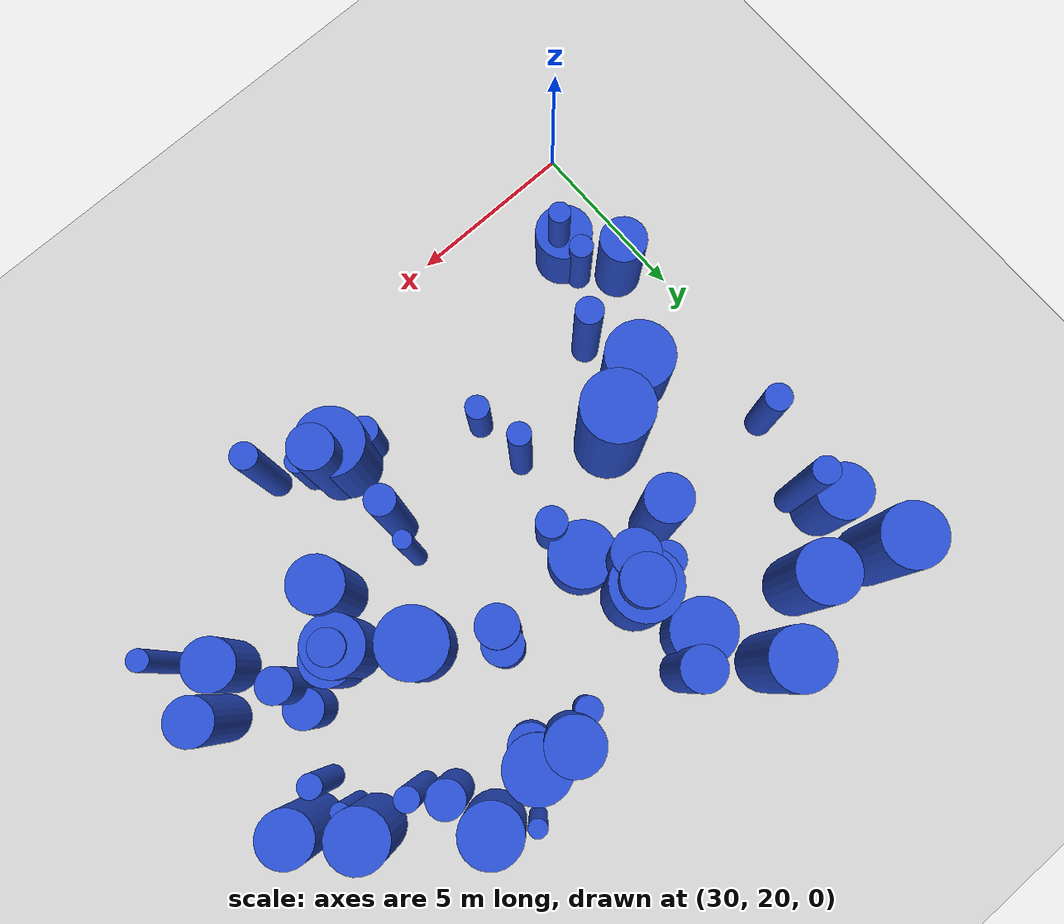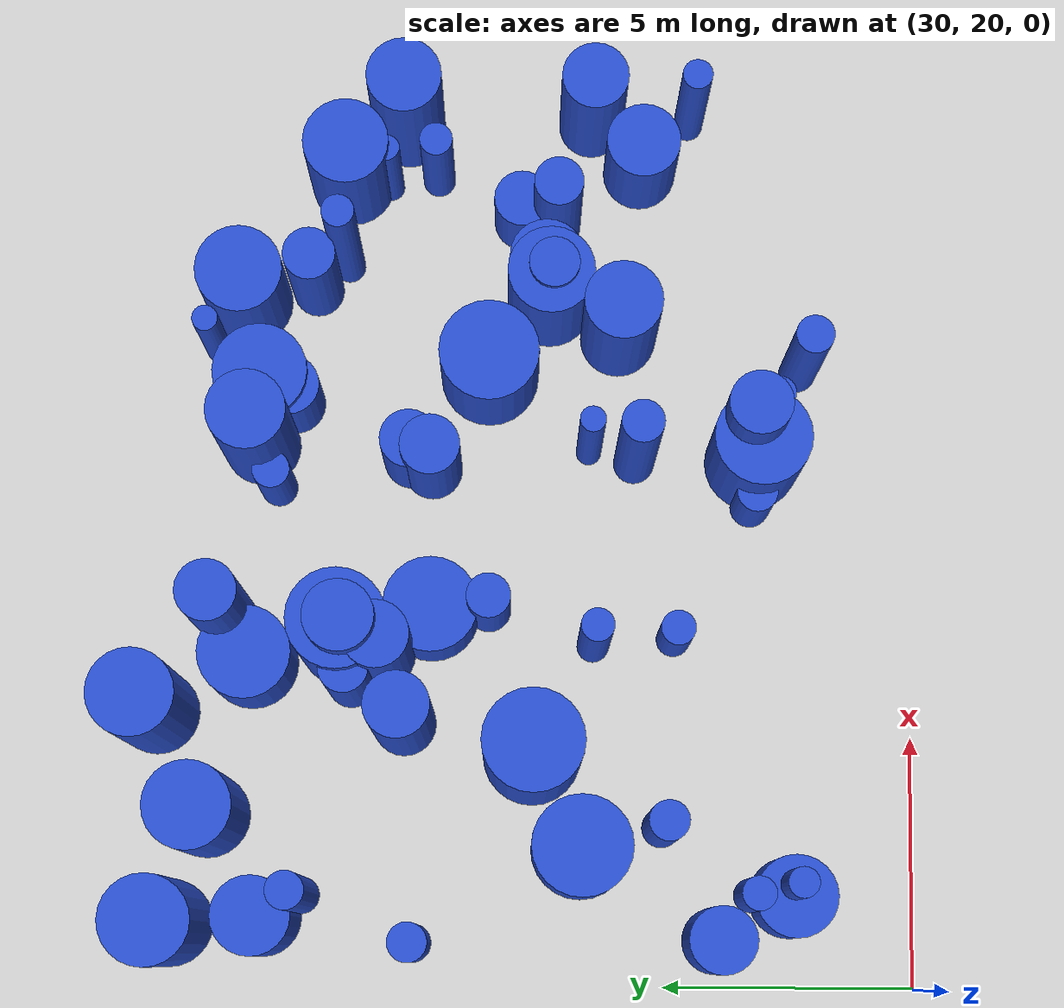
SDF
<sdf version="1.6">
 <world name="default">
  <model name="ground_plane">
   <static>1</static>
   <link name="link">
    <collision name="collision">
     <geometry><plane><normal>0 0 1</normal><size>100 100</size></plane></geometry>
     <surface><friction><ode><mu>100</mu><mu2>50</mu2></ode></friction></surface>
    </collision>
    <visual name="visual">
     <cast_shadows>0</cast_shadows>
     <geometry><plane><normal>0 0 1</normal><size>100 100</size></plane></geometry>
     <material>
      <script><uri>file://media/materials/scripts/gazebo.material</uri><name>Gazebo/Grey</name></script>
     </material>
    </visual>
   </link>
  </model>
  <model name="2">
   <static>0</static>
   <link name="link">
    <inertial>
     <mass>2</mass>
     <inertia><ixx>1.55938</ixx><ixy>0</ixy><ixz>0</ixz><iyy>1.55938</iyy><iyz>0</iyz><izz>0.44286</izz></inertia>
    </inertial>
    <collision name="collision">
     <geometry><cylinder><length>2.83332</length><radius>0.665477</radius></cylinder></geometry>
     <surface><contact><collide_without_contact>1</collide_without_contact></contact></surface>
    </collision>
    <visual name="visual">
     <geometry><cylinder><length>2.83332</length><radius>0.665477</radius></cylinder></geometry>
     <material>
      <script><uri>file://media/materials/scripts/gazebo.material</uri><name>Gazebo/Blue</name></script>
     </material>
    </visual>
    <gravity>0</gravity>
   </link>
   <pose>30.9281 23.9603 1.41666 0 -0 0</pose>
  </model>
  <model name="7">
   <static>0</static>
   <link name="link">
    <inertial>
     <mass>2</mass>
     <inertia><ixx>4.24686</ixx><ixy>0</ixy><ixz>0</ixz><iyy>4.24686</iyy><iyz>0</iyz><izz>0.171142</izz></inertia>
    </inertial>
    <collision name="collision">
     <geometry><cylinder><length>4.99677</length><radius>0.413693</radius></cylinder></geometry>
     <surface><contact><collide_without_contact>1</collide_without_contact></contact></surface>
    </collision>
    <visual name="visual">
     <geometry><cylinder><length>4.99677</length><radius>0.413693</radius></cylinder></geometry>
     <material>
      <script><uri>file://media/materials/scripts/gazebo.material</uri><name>Gazebo/Blue</name></script>
     </material>
    </visual>
    <gravity>0</gravity>
   </link>
   <pose>40.5992 25.5949 2.49839 0 -0 0</pose>
  </model>
  <model name="20">
   <static>0</static>
   <link name="link">
    <inertial>
     <mass>2</mass>
     <inertia><ixx>2.82224</ixx><ixy>0</ixy><ixz>0</ixz><iyy>2.82224</iyy><iyz>0</iyz><izz>0.140236</izz></inertia>
    </inertial>
    <collision name="collision">
     <geometry><cylinder><length>4.06358</length><radius>0.374481</radius></cylinder></geometry>
     <surface><contact><collide_without_contact>1</collide_without_contact></contact></surface>
    </collision>
    <visual name="visual">
     <geometry><cylinder><length>4.06358</length><radius>0.374481</radius></cylinder></geometry>
     <material>
      <script><uri>file://media/materials/scripts/gazebo.material</uri><name>Gazebo/Blue</name></script>
     </material>
    </visual>
    <gravity>0</gravity>
   </link>
   <pose>42.4835 22.2448 2.03179 0 -0 0</pose>
  </model>
  <model name="24">
   <static>0</static>
   <link name="link">
    <inertial>
     <mass>2</mass>
     <inertia><ixx>2.07239</ixx><ixy>0</ixy><ixz>0</ixz><iyy>2.07239</iyy><iyz>0</iyz><izz>0.74145</izz></inertia>
    </inertial>
    <collision name="collision">
     <geometry><cylinder><length>3.19531</length><radius>0.861075</radius></cylinder></geometry>
     <surface><contact><collide_without_contact>1</collide_without_contact></contact></surface>
    </collision>
    <visual name="visual">
     <geometry><cylinder><length>3.19531</length><radius>0.861075</radius></cylinder></geometry>
     <material>
      <script><uri>file://media/materials/scripts/gazebo.material</uri><name>Gazebo/Blue</name></script>
     </material>
    </visual>
    <gravity>0</gravity>
   </link>
   <pose>43.9047 33.4741 1.59766 0 -0 0</pose>
  </model>
  <model name="30">
   <static>0</static>
   <link name="link">
    <inertial>
     <mass>2</mass>
     <inertia>
      <ixx>0.948335</ixx>
      <ixy>0</ixy>
      <ixz>0</ixz>
      <iyy>0.948335</iyy>
      <iyz>0</iyz>
      <izz>0.118719</izz>
     </inertia>
    </inertial>
    <collision name="collision">
     <geometry><cylinder><length>2.30951</length><radius>0.344557</radius></cylinder></geometry>
     <surface><contact><collide_without_contact>1</collide_without_contact></contact></surface>
    </collision>
    <visual name="visual">
     <geometry><cylinder><length>2.30951</length><radius>0.344557</radius></cylinder></geometry>
     <material>
      <script><uri>file://media/materials/scripts/gazebo.material</uri><name>Gazebo/Blue</name></script>
     </material>
    </visual>
    <gravity>0</gravity>
   </link>
   <pose>36.9819 24.7904 1.15476 0 -0 0</pose>
  </model>
  <model name="37">
   <static>0</static>
   <link name="link">
    <inertial>
     <mass>2</mass>
     <inertia><ixx>3.10226</ixx><ixy>0</ixy><ixz>0</ixz><iyy>3.10226</iyy><iyz>0</iyz><izz>0.951705</izz></inertia>
    </inertial>
    <collision name="collision">
     <geometry><cylinder><length>3.96969</length><radius>0.975554</radius></cylinder></geometry>
     <surface><contact><collide_without_contact>1</collide_without_contact></contact></surface>
    </collision>
    <visual name="visual">
     <geometry><cylinder><length>3.96969</length><radius>0.975554</radius></cylinder></geometry>
     <material>
      <script><uri>file://media/materials/scripts/gazebo.material</uri><name>Gazebo/Blue</name></script>
     </material>
    </visual>
    <gravity>0</gravity>
   </link>
   <pose>36.9478 31.4151 1.98485 0 -0 0</pose>
  </model>
  <model name="39">
   <static>0</static>
   <link name="link">
    <inertial>
     <mass>2</mass>
     <inertia>
      <ixx>0.895212</ixx>
      <ixy>0</ixy>
      <ixz>0</ixz>
      <iyy>0.895212</iyy>
      <iyz>0</iyz>
      <izz>0.162805</izz>
     </inertia>
    </inertial>
    <collision name="collision">
     <geometry><cylinder><length>2.20972</length><radius>0.403491</radius></cylinder></geometry>
     <surface><contact><collide_without_contact>1</collide_without_contact></contact></surface>
    </collision>
    <visual name="visual">
     <geometry><cylinder><length>2.20972</length><radius>0.403491</radius></cylinder></geometry>
     <material>
      <script><uri>file://media/materials/scripts/gazebo.material</uri><name>Gazebo/Blue</name></script>
     </material>
    </visual>
    <gravity>0</gravity>
   </link>
   <pose>39.7052 23.2253 1.10486 0 -0 0</pose>
  </model>
  <model name="46">
   <static>0</static>
   <link name="link">
    <inertial>
     <mass>2</mass>
     <inertia><ixx>2.80292</ixx><ixy>0</ixy><ixz>0</ixz><iyy>2.80292</iyy><iyz>0</iyz><izz>0.10545</izz></inertia>
    </inertial>
    <collision name="collision">
     <geometry><cylinder><length>4.06216</length><radius>0.32473</radius></cylinder></geometry>
     <surface><contact><collide_without_contact>1</collide_without_contact></contact></surface>
    </collision>
    <visual name="visual">
     <geometry><cylinder><length>4.06216</length><radius>0.32473</radius></cylinder></geometry>
     <material>
      <script><uri>file://media/materials/scripts/gazebo.material</uri><name>Gazebo/Blue</name></script>
     </material>
    </visual>
    <gravity>0</gravity>
   </link>
   <pose>36.8355 26.4172 2.03108 0 -0 0</pose>
  </model>
  <model name="47">
   <static>0</static>
   <link name="link">
    <inertial>
     <mass>2</mass>
     <inertia><ixx>1.90834</ixx><ixy>0</ixy><ixz>0</ixz><iyy>1.90834</iyy><iyz>0</iyz><izz>0.988377</izz></inertia>
    </inertial>
    <collision name="collision">
     <geometry><cylinder><length>2.91289</length><radius>0.994171</radius></cylinder></geometry>
     <surface><contact><collide_without_contact>1</collide_without_contact></contact></surface>
    </collision>
    <visual name="visual">
     <geometry><cylinder><length>2.91289</length><radius>0.994171</radius></cylinder></geometry>
     <material>
      <script><uri>file://media/materials/scripts/gazebo.material</uri><name>Gazebo/Blue</name></script>
     </material>
    </visual>
    <gravity>0</gravity>
   </link>
   <pose>42.3702 28.5407 1.45644 0 -0 0</pose>
  </model>
  <model name="55">
   <static>0</static>
   <link name="link">
    <inertial>
     <mass>2</mass>
     <inertia><ixx>1.46159</ixx><ixy>0</ixy><ixz>0</ixz><iyy>1.46159</iyy><iyz>0</iyz><izz>0.545159</izz></inertia>
    </inertial>
    <collision name="collision">
     <geometry><cylinder><length>2.67097</length><radius>0.738349</radius></cylinder></geometry>
     <surface><contact><collide_without_contact>1</collide_without_contact></contact></surface>
    </collision>
    <visual name="visual">
     <geometry><cylinder><length>2.67097</length><radius>0.738349</radius></cylinder></geometry>
     <material>
      <script><uri>file://media/materials/scripts/gazebo.material</uri><name>Gazebo/Blue</name></script>
     </material>
    </visual>
    <gravity>0</gravity>
   </link>
   <pose>46.6874 25.4916 1.33548 0 -0 0</pose>
  </model>
  <model name="62">
   <static>0</static>
   <link name="link">
    <inertial>
     <mass>2</mass>
     <inertia><ixx>2.04969</ixx><ixy>0</ixy><ixz>0</ixz><iyy>2.04969</iyy><iyz>0</iyz><izz>0.595965</izz></inertia>
    </inertial>
    <collision name="collision">
     <geometry><cylinder><length>3.24195</length><radius>0.771988</radius></cylinder></geometry>
     <surface><contact><collide_without_contact>1</collide_without_contact></contact></surface>
    </collision>
    <visual name="visual">
     <geometry><cylinder><length>3.24195</length><radius>0.771988</radius></cylinder></geometry>
     <material>
      <script><uri>file://media/materials/scripts/gazebo.material</uri><name>Gazebo/Blue</name></script>
     </material>
    </visual>
    <gravity>0</gravity>
   </link>
   <pose>31.3314 33.0011 1.62098 0 -0 0</pose>
  </model>
  <model name="63">
   <static>0</static>
   <link name="link">
    <inertial>
     <mass>2</mass>
     <inertia><ixx>1.61709</ixx><ixy>0</ixy><ixz>0</ixz><iyy>1.61709</iyy><iyz>0</iyz><izz>0.150907</izz></inertia>
    </inertial>
    <collision name="collision">
     <geometry><cylinder><length>3.04135</length><radius>0.388467</radius></cylinder></geometry>
     <surface><contact><collide_without_contact>1</collide_without_contact></contact></surface>
    </collision>
    <visual name="visual">
     <geometry><cylinder><length>3.04135</length><radius>0.388467</radius></cylinder></geometry>
     <material>
      <script><uri>file://media/materials/scripts/gazebo.material</uri><name>Gazebo/Blue</name></script>
     </material>
    </visual>
    <gravity>0</gravity>
   </link>
   <pose>30.8493 30.0189 1.52067 0 -0 0</pose>
  </model>
  <model name="77">
   <static>0</static>
   <link name="link">
    <inertial>
     <mass>2</mass>
     <inertia><ixx>3.70884</ixx><ixy>0</ixy><ixz>0</ixz><iyy>3.70884</iyy><iyz>0</iyz><izz>0.383531</izz></inertia>
    </inertial>
    <collision name="collision">
     <geometry><cylinder><length>4.59374</length><radius>0.619299</radius></cylinder></geometry>
     <surface><contact><collide_without_contact>1</collide_without_contact></contact></surface>
    </collision>
    <visual name="visual">
     <geometry><cylinder><length>4.59374</length><radius>0.619299</radius></cylinder></geometry>
     <material>
      <script><uri>file://media/materials/scripts/gazebo.material</uri><name>Gazebo/Blue</name></script>
     </material>
    </visual>
    <gravity>0</gravity>
   </link>
   <pose>41.0513 23.3285 2.29687 0 -0 0</pose>
  </model>
  <model name="114">
   <static>0</static>
   <link name="link">
    <inertial>
     <mass>2</mass>
     <inertia><ixx>1.56107</ixx><ixy>0</ixy><ixz>0</ixz><iyy>1.56107</iyy><iyz>0</iyz><izz>0.543529</izz></inertia>
    </inertial>
    <collision name="collision">
     <geometry><cylinder><length>2.78133</length><radius>0.737244</radius></cylinder></geometry>
     <surface><contact><collide_without_contact>1</collide_without_contact></contact></surface>
    </collision>
    <visual name="visual">
     <geometry><cylinder><length>2.78133</length><radius>0.737244</radius></cylinder></geometry>
     <material>
      <script><uri>file://media/materials/scripts/gazebo.material</uri><name>Gazebo/Blue</name></script>
     </material>
    </visual>
    <gravity>0</gravity>
   </link>
   <pose>44.3012 27.4066 1.39067 0 -0 0</pose>
  </model>
  <model name="116">
   <static>0</static>
   <link name="link">
    <inertial>
     <mass>2</mass>
     <inertia>
      <ixx>2.61659</ixx>
      <ixy>0</ixy>
      <ixz>0</ixz>
      <iyy>2.61659</iyy>
      <iyz>0</iyz>
      <izz>0.0647721</izz>
     </inertia>
    </inertial>
    <collision name="collision">
     <geometry><cylinder><length>3.93767</length><radius>0.254504</radius></cylinder></geometry>
     <surface><contact><collide_without_contact>1</collide_without_contact></contact></surface>
    </collision>
    <visual name="visual">
     <geometry><cylinder><length>3.93767</length><radius>0.254504</radius></cylinder></geometry>
     <material>
      <script><uri>file://media/materials/scripts/gazebo.material</uri><name>Gazebo/Blue</name></script>
     </material>
    </visual>
    <gravity>0</gravity>
   </link>
   <pose>40.8198 26.5162 1.96883 0 -0 0</pose>
  </model>
  <model name="131">
   <static>0</static>
   <link name="link">
    <inertial>
     <mass>2</mass>
     <inertia><ixx>3.80125</ixx><ixy>0</ixy><ixz>0</ixz><iyy>3.80125</iyy><iyz>0</iyz><izz>0.478681</izz></inertia>
    </inertial>
    <collision name="collision">
     <geometry><cylinder><length>4.62293</length><radius>0.691868</radius></cylinder></geometry>
     <surface><contact><collide_without_contact>1</collide_without_contact></contact></surface>
    </collision>
    <visual name="visual">
     <geometry><cylinder><length>4.62293</length><radius>0.691868</radius></cylinder></geometry>
     <material>
      <script><uri>file://media/materials/scripts/gazebo.material</uri><name>Gazebo/Blue</name></script>
     </material>
    </visual>
    <gravity>0</gravity>
   </link>
   <pose>36.9289 31.3375 2.31146 0 -0 0</pose>
  </model>
  <model name="152">
   <static>0</static>
   <link name="link">
    <inertial>
     <mass>2</mass>
     <inertia><ixx>2.1005</ixx><ixy>0</ixy><ixz>0</ixz><iyy>2.1005</iyy><iyz>0</iyz><izz>0.270482</izz></inertia>
    </inertial>
    <collision name="collision">
     <geometry><cylinder><length>3.43388</length><radius>0.520079</radius></cylinder></geometry>
     <surface><contact><collide_without_contact>1</collide_without_contact></contact></surface>
    </collision>
    <visual name="visual">
     <geometry><cylinder><length>3.43388</length><radius>0.520079</radius></cylinder></geometry>
     <material>
      <script><uri>file://media/materials/scripts/gazebo.material</uri><name>Gazebo/Blue</name></script>
     </material>
    </visual>
    <gravity>0</gravity>
   </link>
   <pose>44.16 32.0785 1.71694 0 -0 0</pose>
  </model>
  <model name="157">
   <static>0</static>
   <link name="link">
    <inertial>
     <mass>2</mass>
     <inertia><ixx>1.12934</ixx><ixy>0</ixy><ixz>0</ixz><iyy>1.12934</iyy><iyz>0</iyz><izz>0.888814</izz></inertia>
    </inertial>
    <collision name="collision">
     <geometry><cylinder><length>2.02722</length><radius>0.942769</radius></cylinder></geometry>
     <surface><contact><collide_without_contact>1</collide_without_contact></contact></surface>
    </collision>
    <visual name="visual">
     <geometry><cylinder><length>2.02722</length><radius>0.942769</radius></cylinder></geometry>
     <material>
      <script><uri>file://media/materials/scripts/gazebo.material</uri><name>Gazebo/Blue</name></script>
     </material>
    </visual>
    <gravity>0</gravity>
   </link>
   <pose>37.4515 29.6656 1.01361 0 -0 0</pose>
  </model>
  <model name="159">
   <static>0</static>
   <link name="link">
    <inertial>
     <mass>2</mass>
     <inertia><ixx>2.35713</ixx><ixy>0</ixy><ixz>0</ixz><iyy>2.35713</iyy><iyz>0</iyz><izz>0.716433</izz></inertia>
    </inertial>
    <collision name="collision">
     <geometry><cylinder><length>3.46316</length><radius>0.846423</radius></cylinder></geometry>
     <surface><contact><collide_without_contact>1</collide_without_contact></contact></surface>
    </collision>
    <visual name="visual">
     <geometry><cylinder><length>3.46316</length><radius>0.846423</radius></cylinder></geometry>
     <material>
      <script><uri>file://media/materials/scripts/gazebo.material</uri><name>Gazebo/Blue</name></script>
     </material>
    </visual>
    <gravity>0</gravity>
   </link>
   <pose>46.4214 31.3944 1.73158 0 -0 0</pose>
  </model>
  <model name="166">
   <static>0</static>
   <link name="link">
    <inertial>
     <mass>2</mass>
     <inertia><ixx>1.08491</ixx><ixy>0</ixy><ixz>0</ixz><iyy>1.08491</iyy><iyz>0</iyz><izz>0.115595</izz></inertia>
    </inertial>
    <collision name="collision">
     <geometry><cylinder><length>2.48247</length><radius>0.339992</radius></cylinder></geometry>
     <surface><contact><collide_without_contact>1</collide_without_contact></contact></surface>
    </collision>
    <visual name="visual">
     <geometry><cylinder><length>2.48247</length><radius>0.339992</radius></cylinder></geometry>
     <material>
      <script><uri>file://media/materials/scripts/gazebo.material</uri><name>Gazebo/Blue</name></script>
     </material>
    </visual>
    <gravity>0</gravity>
   </link>
   <pose>31.8331 23.245 1.24124 0 -0 0</pose>
  </model>
  <model name="174">
   <static>0</static>
   <link name="link">
    <inertial>
     <mass>2</mass>
     <inertia><ixx>3.44519</ixx><ixy>0</ixy><ixz>0</ixz><iyy>3.44519</iyy><iyz>0</iyz><izz>0.726752</izz></inertia>
    </inertial>
    <collision name="collision">
     <geometry><cylinder><length>4.3001</length><radius>0.852498</radius></cylinder></geometry>
     <surface><contact><collide_without_contact>1</collide_without_contact></contact></surface>
    </collision>
    <visual name="visual">
     <geometry><cylinder><length>4.3001</length><radius>0.852498</radius></cylinder></geometry>
     <material>
      <script><uri>file://media/materials/scripts/gazebo.material</uri><name>Gazebo/Blue</name></script>
     </material>
    </visual>
    <gravity>0</gravity>
   </link>
   <pose>33.3684 34.1408 2.15005 0 -0 0</pose>
  </model>
  <model name="220">
   <static>0</static>
   <link name="link">
    <inertial>
     <mass>2</mass>
     <inertia><ixx>3.82869</ixx><ixy>0</ixy><ixz>0</ixz><iyy>3.82869</iyy><iyz>0</iyz><izz>0.763171</izz></inertia>
    </inertial>
    <collision name="collision">
     <geometry><cylinder><length>4.54781</length><radius>0.873596</radius></cylinder></geometry>
     <surface><contact><collide_without_contact>1</collide_without_contact></contact></surface>
    </collision>
    <visual name="visual">
     <geometry><cylinder><length>4.54781</length><radius>0.873596</radius></cylinder></geometry>
     <material>
      <script><uri>file://media/materials/scripts/gazebo.material</uri><name>Gazebo/Blue</name></script>
     </material>
    </visual>
    <gravity>0</gravity>
   </link>
   <pose>31.2194 34.8639 2.27391 0 -0 0</pose>
  </model>
  <model name="246">
   <static>0</static>
   <link name="link">
    <inertial>
     <mass>2</mass>
     <inertia><ixx>1.64127</ixx><ixy>0</ixy><ixz>0</ixz><iyy>1.64127</iyy><iyz>0</iyz><izz>0.991313</izz></inertia>
    </inertial>
    <collision name="collision">
     <geometry><cylinder><length>2.62177</length><radius>0.995647</radius></cylinder></geometry>
     <surface><contact><collide_without_contact>1</collide_without_contact></contact></surface>
    </collision>
    <visual name="visual">
     <geometry><cylinder><length>2.62177</length><radius>0.995647</radius></cylinder></geometry>
     <material>
      <script><uri>file://media/materials/scripts/gazebo.material</uri><name>Gazebo/Blue</name></script>
     </material>
    </visual>
    <gravity>0</gravity>
   </link>
   <pose>32.7238 26.6613 1.31088 0 -0 0</pose>
  </model>
  <model name="258">
   <static>0</static>
   <link name="link">
    <inertial>
     <mass>2</mass>
     <inertia><ixx>1.84634</ixx><ixy>0</ixy><ixz>0</ixz><iyy>1.84634</iyy><iyz>0</iyz><izz>0.107284</izz></inertia>
    </inertial>
    <collision name="collision">
     <geometry><cylinder><length>3.27966</length><radius>0.327543</radius></cylinder></geometry>
     <surface><contact><collide_without_contact>1</collide_without_contact></contact></surface>
    </collision>
    <visual name="visual">
     <geometry><cylinder><length>3.27966</length><radius>0.327543</radius></cylinder></geometry>
     <material>
      <script><uri>file://media/materials/scripts/gazebo.material</uri><name>Gazebo/Blue</name></script>
     </material>
    </visual>
    <gravity>0</gravity>
   </link>
   <pose>46.5139 29.6187 1.63983 0 -0 0</pose>
  </model>
  <model name="265">
   <static>0</static>
   <link name="link">
    <inertial>
     <mass>2</mass>
     <inertia><ixx>1.9125</ixx><ixy>0</ixy><ixz>0</ixz><iyy>1.9125</iyy><iyz>0</iyz><izz>0.353968</izz></inertia>
    </inertial>
    <collision name="collision">
     <geometry><cylinder><length>3.22693</length><radius>0.594952</radius></cylinder></geometry>
     <surface><contact><collide_without_contact>1</collide_without_contact></contact></surface>
    </collision>
    <visual name="visual">
     <geometry><cylinder><length>3.22693</length><radius>0.594952</radius></cylinder></geometry>
     <material>
      <script><uri>file://media/materials/scripts/gazebo.material</uri><name>Gazebo/Blue</name></script>
     </material>
    </visual>
    <gravity>0</gravity>
   </link>
   <pose>40.4345 29.684 1.61347 0 -0 0</pose>
  </model>
  <model name="278">
   <static>0</static>
   <link name="link">
    <inertial>
     <mass>2</mass>
     <inertia><ixx>1.67807</ixx><ixy>0</ixy><ixz>0</ixz><iyy>1.67807</iyy><iyz>0</iyz><izz>0.065135</izz></inertia>
    </inertial>
    <collision name="collision">
     <geometry><cylinder><length>3.14214</length><radius>0.255216</radius></cylinder></geometry>
     <surface><contact><collide_without_contact>1</collide_without_contact></contact></surface>
    </collision>
    <visual name="visual">
     <geometry><cylinder><length>3.14214</length><radius>0.255216</radius></cylinder></geometry>
     <material>
      <script><uri>file://media/materials/scripts/gazebo.material</uri><name>Gazebo/Blue</name></script>
     </material>
    </visual>
    <gravity>0</gravity>
   </link>
   <pose>42.9175 34.1124 1.57107 0 -0 0</pose>
  </model>
  <model name="280">
   <static>0</static>
   <link name="link">
    <inertial>
     <mass>2</mass>
     <inertia><ixx>1.44169</ixx><ixy>0</ixy><ixz>0</ixz><iyy>1.44169</iyy><iyz>0</iyz><izz>0.8912</izz></inertia>
    </inertial>
    <collision name="collision">
     <geometry><cylinder><length>2.44469</length><radius>0.944034</radius></cylinder></geometry>
     <surface><contact><collide_without_contact>1</collide_without_contact></contact></surface>
    </collision>
    <visual name="visual">
     <geometry><cylinder><length>2.44469</length><radius>0.944034</radius></cylinder></geometry>
     <material>
      <script><uri>file://media/materials/scripts/gazebo.material</uri><name>Gazebo/Blue</name></script>
     </material>
    </visual>
    <gravity>0</gravity>
   </link>
   <pose>42.0224 33.0819 1.22235 0 -0 0</pose>
  </model>
  <model name="282">
   <static>0</static>
   <link name="link">
    <inertial>
     <mass>2</mass>
     <inertia><ixx>1.24321</ixx><ixy>0</ixy><ixz>0</ixz><iyy>1.24321</iyy><iyz>0</iyz><izz>0.112013</izz></inertia>
    </inertial>
    <collision name="collision">
     <geometry><cylinder><length>2.66893</length><radius>0.334683</radius></cylinder></geometry>
     <surface><contact><collide_without_contact>1</collide_without_contact></contact></surface>
    </collision>
    <visual name="visual">
     <geometry><cylinder><length>2.66893</length><radius>0.334683</radius></cylinder></geometry>
     <material>
      <script><uri>file://media/materials/scripts/gazebo.material</uri><name>Gazebo/Blue</name></script>
     </material>
    </visual>
    <gravity>0</gravity>
   </link>
   <pose>41.5961 22.8233 1.33447 0 -0 0</pose>
  </model>
  <model name="288">
   <static>0</static>
   <link name="link">
    <inertial>
     <mass>2</mass>
     <inertia><ixx>2.77788</ixx><ixy>0</ixy><ixz>0</ixz><iyy>2.77788</iyy><iyz>0</iyz><izz>0.593314</izz></inertia>
    </inertial>
    <collision name="collision">
     <geometry><cylinder><length>3.85841</length><radius>0.770269</radius></cylinder></geometry>
     <surface><contact><collide_without_contact>1</collide_without_contact></contact></surface>
    </collision>
    <visual name="visual">
     <geometry><cylinder><length>3.85841</length><radius>0.770269</radius></cylinder></geometry>
     <material>
      <script><uri>file://media/materials/scripts/gazebo.material</uri><name>Gazebo/Blue</name></script>
     </material>
    </visual>
    <gravity>0</gravity>
   </link>
   <pose>43.1863 25.9254 1.9292 0 -0 0</pose>
  </model>
  <model name="302">
   <static>0</static>
   <link name="link">
    <inertial>
     <mass>2</mass>
     <inertia><ixx>2.21734</ixx><ixy>0</ixy><ixz>0</ixz><iyy>2.21734</iyy><iyz>0</iyz><izz>0.241905</izz></inertia>
    </inertial>
    <collision name="collision">
     <geometry><cylinder><length>3.5466</length><radius>0.491838</radius></cylinder></geometry>
     <surface><contact><collide_without_contact>1</collide_without_contact></contact></surface>
    </collision>
    <visual name="visual">
     <geometry><cylinder><length>3.5466</length><radius>0.491838</radius></cylinder></geometry>
     <material>
      <script><uri>file://media/materials/scripts/gazebo.material</uri><name>Gazebo/Blue</name></script>
     </material>
    </visual>
    <gravity>0</gravity>
   </link>
   <pose>36.0481 31.2862 1.7733 0 -0 0</pose>
  </model>
  <model name="312">
   <static>0</static>
   <link name="link">
    <inertial>
     <mass>2</mass>
     <inertia><ixx>4.22418</ixx><ixy>0</ixy><ixz>0</ixz><iyy>4.22418</iyy><iyz>0</iyz><izz>0.707616</izz></inertia>
    </inertial>
    <collision name="collision">
     <geometry><cylinder><length>4.81895</length><radius>0.841199</radius></cylinder></geometry>
     <surface><contact><collide_without_contact>1</collide_without_contact></contact></surface>
    </collision>
    <visual name="visual">
     <geometry><cylinder><length>4.81895</length><radius>0.841199</radius></cylinder></geometry>
     <material>
      <script><uri>file://media/materials/scripts/gazebo.material</uri><name>Gazebo/Blue</name></script>
     </material>
    </visual>
    <gravity>0</gravity>
   </link>
   <pose>35.4349 35.1908 2.40947 0 -0 0</pose>
  </model>
  <model name="316">
   <static>0</static>
   <link name="link">
    <inertial>
     <mass>2</mass>
     <inertia><ixx>4.32323</ixx><ixy>0</ixy><ixz>0</ixz><iyy>4.32323</iyy><iyz>0</iyz><izz>0.972373</izz></inertia>
    </inertial>
    <collision name="collision">
     <geometry><cylinder><length>4.79815</length><radius>0.98609</radius></cylinder></geometry>
     <surface><contact><collide_without_contact>1</collide_without_contact></contact></surface>
    </collision>
    <visual name="visual">
     <geometry><cylinder><length>4.79815</length><radius>0.98609</radius></cylinder></geometry>
     <material>
      <script><uri>file://media/materials/scripts/gazebo.material</uri><name>Gazebo/Blue</name></script>
     </material>
    </visual>
    <gravity>0</gravity>
   </link>
   <pose>34.5963 27.6354 2.39907 0 -0 0</pose>
  </model>
  <model name="321">
   <static>0</static>
   <link name="link">
    <inertial>
     <mass>2</mass>
     <inertia><ixx>1.01781</ixx><ixy>0</ixy><ixz>0</ixz><iyy>1.01781</iyy><iyz>0</iyz><izz>0.361367</izz></inertia>
    </inertial>
    <collision name="collision">
     <geometry><cylinder><length>2.24115</length><radius>0.601138</radius></cylinder></geometry>
     <surface><contact><collide_without_contact>1</collide_without_contact></contact></surface>
    </collision>
    <visual name="visual">
     <geometry><cylinder><length>2.24115</length><radius>0.601138</radius></cylinder></geometry>
     <material>
      <script><uri>file://media/materials/scripts/gazebo.material</uri><name>Gazebo/Blue</name></script>
     </material>
    </visual>
    <gravity>0</gravity>
   </link>
   <pose>41.7842 32.5096 1.12058 0 -0 0</pose>
  </model>
  <model name="344">
   <static>0</static>
   <link name="link">
    <inertial>
     <mass>2</mass>
     <inertia><ixx>3.99117</ixx><ixy>0</ixy><ixz>0</ixz><iyy>3.99117</iyy><iyz>0</iyz><izz>0.353458</izz></inertia>
    </inertial>
    <collision name="collision">
     <geometry><cylinder><length>4.784</length><radius>0.594524</radius></cylinder></geometry>
     <surface><contact><collide_without_contact>1</collide_without_contact></contact></surface>
    </collision>
    <visual name="visual">
     <geometry><cylinder><length>4.784</length><radius>0.594524</radius></cylinder></geometry>
     <material>
      <script><uri>file://media/materials/scripts/gazebo.material</uri><name>Gazebo/Blue</name></script>
     </material>
    </visual>
    <gravity>0</gravity>
   </link>
   <pose>37.365 33.8203 2.392 0 -0 0</pose>
  </model>
  <model name="347">
   <static>0</static>
   <link name="link">
    <inertial>
     <mass>2</mass>
     <inertia><ixx>1.0247</ixx><ixy>0</ixy><ixz>0</ixz><iyy>1.0247</iyy><iyz>0</iyz><izz>0.658867</izz></inertia>
    </inertial>
    <collision name="collision">
     <geometry><cylinder><length>2.04245</length><radius>0.811706</radius></cylinder></geometry>
     <surface><contact><collide_without_contact>1</collide_without_contact></contact></surface>
    </collision>
    <visual name="visual">
     <geometry><cylinder><length>2.04245</length><radius>0.811706</radius></cylinder></geometry>
     <material>
      <script><uri>file://media/materials/scripts/gazebo.material</uri><name>Gazebo/Blue</name></script>
     </material>
    </visual>
    <gravity>0</gravity>
   </link>
   <pose>31.7929 22.4808 1.02123 0 -0 0</pose>
  </model>
  <model name="351">
   <static>0</static>
   <link name="link">
    <inertial>
     <mass>2</mass>
     <inertia>
      <ixx>0.865694</ixx>
      <ixy>0</ixy>
      <ixz>0</ixz>
      <iyy>0.865694</iyy>
      <iyz>0</iyz>
      <izz>0.313935</izz>
     </inertia>
    </inertial>
    <collision name="collision">
     <geometry><cylinder><length>2.06212</length><radius>0.560299</radius></cylinder></geometry>
     <surface><contact><collide_without_contact>1</collide_without_contact></contact></surface>
    </collision>
    <visual name="visual">
     <geometry><cylinder><length>2.06212</length><radius>0.560299</radius></cylinder></geometry>
     <material>
      <script><uri>file://media/materials/scripts/gazebo.material</uri><name>Gazebo/Blue</name></script>
     </material>
    </visual>
    <gravity>0</gravity>
   </link>
   <pose>45.6406 27.9054 1.03106 0 -0 0</pose>
  </model>
  <model name="361">
   <static>0</static>
   <link name="link">
    <inertial>
     <mass>2</mass>
     <inertia><ixx>2.50698</ixx><ixy>0</ixy><ixz>0</ixz><iyy>2.50698</iyy><iyz>0</iyz><izz>0.43516</izz></inertia>
    </inertial>
    <collision name="collision">
     <geometry><cylinder><length>3.70626</length><radius>0.659666</radius></cylinder></geometry>
     <surface><contact><collide_without_contact>1</collide_without_contact></contact></surface>
    </collision>
    <visual name="visual">
     <geometry><cylinder><length>3.70626</length><radius>0.659666</radius></cylinder></geometry>
     <material>
      <script><uri>file://media/materials/scripts/gazebo.material</uri><name>Gazebo/Blue</name></script>
     </material>
    </visual>
    <gravity>0</gravity>
   </link>
   <pose>47.7023 26.482 1.85313 0 -0 0</pose>
  </model>
  <model name="363">
   <static>0</static>
   <link name="link">
    <inertial>
     <mass>2</mass>
     <inertia><ixx>4.23782</ixx><ixy>0</ixy><ixz>0</ixz><iyy>4.23782</iyy><iyz>0</iyz><izz>0.408686</izz></inertia>
    </inertial>
    <collision name="collision">
     <geometry><cylinder><length>4.91944</length><radius>0.639286</radius></cylinder></geometry>
     <surface><contact><collide_without_contact>1</collide_without_contact></contact></surface>
    </collision>
    <visual name="visual">
     <geometry><cylinder><length>4.91944</length><radius>0.639286</radius></cylinder></geometry>
     <material>
      <script><uri>file://media/materials/scripts/gazebo.material</uri><name>Gazebo/Blue</name></script>
     </material>
    </visual>
    <gravity>0</gravity>
   </link>
   <pose>35.2293 30.2097 2.45972 0 -0 0</pose>
  </model>
  <model name="373">
   <static>0</static>
   <link name="link">
    <inertial>
     <mass>2</mass>
     <inertia><ixx>3.02724</ixx><ixy>0</ixy><ixz>0</ixz><iyy>3.02724</iyy><iyz>0</iyz><izz>0.429218</izz></inertia>
    </inertial>
    <collision name="collision">
     <geometry><cylinder><length>4.10802</length><radius>0.655147</radius></cylinder></geometry>
     <surface><contact><collide_without_contact>1</collide_without_contact></contact></surface>
    </collision>
    <visual name="visual">
     <geometry><cylinder><length>4.10802</length><radius>0.655147</radius></cylinder></geometry>
     <material>
      <script><uri>file://media/materials/scripts/gazebo.material</uri><name>Gazebo/Blue</name></script>
     </material>
    </visual>
    <gravity>0</gravity>
   </link>
   <pose>36.635 30.6574 2.05401 0 -0 0</pose>
  </model>
  <model name="377">
   <static>0</static>
   <link name="link">
    <inertial>
     <mass>2</mass>
     <inertia><ixx>2.48896</ixx><ixy>0</ixy><ixz>0</ixz><iyy>2.48896</iyy><iyz>0</iyz><izz>0.23539</izz></inertia>
    </inertial>
    <collision name="collision">
     <geometry><cylinder><length>3.77195</length><radius>0.48517</radius></cylinder></geometry>
     <surface><contact><collide_without_contact>1</collide_without_contact></contact></surface>
    </collision>
    <visual name="visual">
     <geometry><cylinder><length>3.77195</length><radius>0.48517</radius></cylinder></geometry>
     <material>
      <script><uri>file://media/materials/scripts/gazebo.material</uri><name>Gazebo/Blue</name></script>
     </material>
    </visual>
    <gravity>0</gravity>
   </link>
   <pose>45.5533 27.1902 1.88597 0 -0 0</pose>
  </model>
  <model name="394">
   <static>0</static>
   <link name="link">
    <inertial>
     <mass>2</mass>
     <inertia><ixx>2.37205</ixx><ixy>0</ixy><ixz>0</ixz><iyy>2.37205</iyy><iyz>0</iyz><izz>0.917567</izz></inertia>
    </inertial>
    <collision name="collision">
     <geometry><cylinder><length>3.38816</length><radius>0.957897</radius></cylinder></geometry>
     <surface><contact><collide_without_contact>1</collide_without_contact></contact></surface>
    </collision>
    <visual name="visual">
     <geometry><cylinder><length>3.38816</length><radius>0.957897</radius></cylinder></geometry>
     <material>
      <script><uri>file://media/materials/scripts/gazebo.material</uri><name>Gazebo/Blue</name></script>
     </material>
    </visual>
    <gravity>0</gravity>
   </link>
   <pose>40.6101 23.1897 1.69408 0 -0 0</pose>
  </model>
  <model name="406">
   <static>0</static>
   <link name="link">
    <inertial>
     <mass>2</mass>
     <inertia><ixx>3.76612</ixx><ixy>0</ixy><ixz>0</ixz><iyy>3.76612</iyy><iyz>0</iyz><izz>0.136975</izz></inertia>
    </inertial>
    <collision name="collision">
     <geometry><cylinder><length>4.71018</length><radius>0.370101</radius></cylinder></geometry>
     <surface><contact><collide_without_contact>1</collide_without_contact></contact></surface>
    </collision>
    <visual name="visual">
     <geometry><cylinder><length>4.71018</length><radius>0.370101</radius></cylinder></geometry>
     <material>
      <script><uri>file://media/materials/scripts/gazebo.material</uri><name>Gazebo/Blue</name></script>
     </material>
    </visual>
    <gravity>0</gravity>
   </link>
   <pose>31.7827 32.246 2.35509 0 -0 0</pose>
  </model>
  <model name="418">
   <static>0</static>
   <link name="link">
    <inertial>
     <mass>2</mass>
     <inertia><ixx>1.09132</ixx><ixy>0</ixy><ixz>0</ixz><iyy>1.09132</iyy><iyz>0</iyz><izz>0.139516</izz></inertia>
    </inertial>
    <collision name="collision">
     <geometry><cylinder><length>2.47576</length><radius>0.373519</radius></cylinder></geometry>
     <surface><contact><collide_without_contact>1</collide_without_contact></contact></surface>
    </collision>
    <visual name="visual">
     <geometry><cylinder><length>2.47576</length><radius>0.373519</radius></cylinder></geometry>
     <material>
      <script><uri>file://media/materials/scripts/gazebo.material</uri><name>Gazebo/Blue</name></script>
     </material>
    </visual>
    <gravity>0</gravity>
   </link>
   <pose>40.0446 32.8211 1.23788 0 -0 0</pose>
  </model>
  <model name="428">
   <static>0</static>
   <link name="link">
    <inertial>
     <mass>2</mass>
     <inertia><ixx>1.41024</ixx><ixy>0</ixy><ixz>0</ixz><iyy>1.41024</iyy><iyz>0</iyz><izz>0.333058</izz></inertia>
    </inertial>
    <collision name="collision">
     <geometry><cylinder><length>2.73172</length><radius>0.577111</radius></cylinder></geometry>
     <surface><contact><collide_without_contact>1</collide_without_contact></contact></surface>
    </collision>
    <visual name="visual">
     <geometry><cylinder><length>2.73172</length><radius>0.577111</radius></cylinder></geometry>
     <material>
      <script><uri>file://media/materials/scripts/gazebo.material</uri><name>Gazebo/Blue</name></script>
     </material>
    </visual>
    <gravity>0</gravity>
   </link>
   <pose>40.6339 30.1103 1.36586 0 -0 0</pose>
  </model>
  <model name="431">
   <static>0</static>
   <link name="link">
    <inertial>
     <mass>2</mass>
     <inertia><ixx>3.87814</ixx><ixy>0</ixy><ixz>0</ixz><iyy>3.87814</iyy><iyz>0</iyz><izz>0.101995</izz></inertia>
    </inertial>
    <collision name="collision">
     <geometry><cylinder><length>4.79196</length><radius>0.319367</radius></cylinder></geometry>
     <surface><contact><collide_without_contact>1</collide_without_contact></contact></surface>
    </collision>
    <visual name="visual">
     <geometry><cylinder><length>4.79196</length><radius>0.319367</radius></cylinder></geometry>
     <material>
      <script><uri>file://media/materials/scripts/gazebo.material</uri><name>Gazebo/Blue</name></script>
     </material>
    </visual>
    <gravity>0</gravity>
   </link>
   <pose>44.6745 31.4452 2.39598 0 -0 0</pose>
  </model>
  <model name="436">
   <static>0</static>
   <link name="link">
    <inertial>
     <mass>2</mass>
     <inertia><ixx>1.04208</ixx><ixy>0</ixy><ixz>0</ixz><iyy>1.04208</iyy><iyz>0</iyz><izz>0.254822</izz></inertia>
    </inertial>
    <collision name="collision">
     <geometry><cylinder><length>2.34265</length><radius>0.504799</radius></cylinder></geometry>
     <surface><contact><collide_without_contact>1</collide_without_contact></contact></surface>
    </collision>
    <visual name="visual">
     <geometry><cylinder><length>2.34265</length><radius>0.504799</radius></cylinder></geometry>
     <material>
      <script><uri>file://media/materials/scripts/gazebo.material</uri><name>Gazebo/Blue</name></script>
     </material>
    </visual>
    <gravity>0</gravity>
   </link>
   <pose>34.9473 27.3599 1.17132 0 -0 0</pose>
  </model>
  <model name="440">
   <static>0</static>
   <link name="link">
    <inertial>
     <mass>2</mass>
     <inertia><ixx>3.20329</ixx><ixy>0</ixy><ixz>0</ixz><iyy>3.20329</iyy><iyz>0</iyz><izz>0.546773</izz></inertia>
    </inertial>
    <collision name="collision">
     <geometry><cylinder><length>4.19278</length><radius>0.739441</radius></cylinder></geometry>
     <surface><contact><collide_without_contact>1</collide_without_contact></contact></surface>
    </collision>
    <visual name="visual">
     <geometry><cylinder><length>4.19278</length><radius>0.739441</radius></cylinder></geometry>
     <material>
      <script><uri>file://media/materials/scripts/gazebo.material</uri><name>Gazebo/Blue</name></script>
     </material>
    </visual>
    <gravity>0</gravity>
   </link>
   <pose>47.5476 30.2351 2.09639 0 -0 0</pose>
  </model>
  <model name="441">
   <static>0</static>
   <link name="link">
    <inertial>
     <mass>2</mass>
     <inertia><ixx>3.51485</ixx><ixy>0</ixy><ixz>0</ixz><iyy>3.51485</iyy><iyz>0</iyz><izz>0.604603</izz></inertia>
    </inertial>
    <collision name="collision">
     <geometry><cylinder><length>4.39036</length><radius>0.777562</radius></cylinder></geometry>
     <surface><contact><collide_without_contact>1</collide_without_contact></contact></surface>
    </collision>
    <visual name="visual">
     <geometry><cylinder><length>4.39036</length><radius>0.777562</radius></cylinder></geometry>
     <material>
      <script><uri>file://media/materials/scripts/gazebo.material</uri><name>Gazebo/Blue</name></script>
     </material>
    </visual>
    <gravity>0</gravity>
   </link>
   <pose>40.8942 33.1747 2.19518 0 -0 0</pose>
  </model>
  <model name="450">
   <static>0</static>
   <link name="link">
    <inertial>
     <mass>2</mass>
     <inertia><ixx>1.22388</ixx><ixy>0</ixy><ixz>0</ixz><iyy>1.22388</iyy><iyz>0</iyz><izz>0.194752</izz></inertia>
    </inertial>
    <collision name="collision">
     <geometry><cylinder><length>2.59981</length><radius>0.441307</radius></cylinder></geometry>
     <surface><contact><collide_without_contact>1</collide_without_contact></contact></surface>
    </collision>
    <visual name="visual">
     <geometry><cylinder><length>2.59981</length><radius>0.441307</radius></cylinder></geometry>
     <material>
      <script><uri>file://media/materials/scripts/gazebo.material</uri><name>Gazebo/Blue</name></script>
     </material>
    </visual>
    <gravity>0</gravity>
   </link>
   <pose>37.5587 28.5214 1.29991 0 -0 0</pose>
  </model>
  <model name="456">
   <static>0</static>
   <link name="link">
    <inertial>
     <mass>2</mass>
     <inertia><ixx>2.2386</ixx><ixy>0</ixy><ixz>0</ixz><iyy>2.2386</iyy><iyz>0</iyz><izz>0.742922</izz></inertia>
    </inertial>
    <collision name="collision">
     <geometry><cylinder><length>3.34706</length><radius>0.861929</radius></cylinder></geometry>
     <surface><contact><collide_without_contact>1</collide_without_contact></contact></surface>
    </collision>
    <visual name="visual">
     <geometry><cylinder><length>3.34706</length><radius>0.861929</radius></cylinder></geometry>
     <material>
      <script><uri>file://media/materials/scripts/gazebo.material</uri><name>Gazebo/Blue</name></script>
     </material>
    </visual>
    <gravity>0</gravity>
   </link>
   <pose>43.8934 27.3227 1.67353 0 -0 0</pose>
  </model>
  <model name="467">
   <static>0</static>
   <link name="link">
    <inertial>
     <mass>2</mass>
     <inertia><ixx>2.15084</ixx><ixy>0</ixy><ixz>0</ixz><iyy>2.15084</iyy><iyz>0</iyz><izz>0.250421</izz></inertia>
    </inertial>
    <collision name="collision">
     <geometry><cylinder><length>3.48622</length><radius>0.500421</radius></cylinder></geometry>
     <surface><contact><collide_without_contact>1</collide_without_contact></contact></surface>
    </collision>
    <visual name="visual">
     <geometry><cylinder><length>3.48622</length><radius>0.500421</radius></cylinder></geometry>
     <material>
      <script><uri>file://media/materials/scripts/gazebo.material</uri><name>Gazebo/Blue</name></script>
     </material>
    </visual>
    <gravity>0</gravity>
   </link>
   <pose>44.0143 27.266 1.74311 0 -0 0</pose>
  </model>
  <model name="483">
   <static>0</static>
   <link name="link">
    <inertial>
     <mass>2</mass>
     <inertia>
      <ixx>1.73425</ixx>
      <ixy>0</ixy>
      <ixz>0</ixz>
      <iyy>1.73425</iyy>
      <iyz>0</iyz>
      <izz>0.0661018</izz>
     </inertia>
    </inertial>
    <collision name="collision">
     <geometry><cylinder><length>3.19487</length><radius>0.257103</radius></cylinder></geometry>
     <surface><contact><collide_without_contact>1</collide_without_contact></contact></surface>
    </collision>
    <visual name="visual">
     <geometry><cylinder><length>3.19487</length><radius>0.257103</radius></cylinder></geometry>
     <material>
      <script><uri>file://media/materials/scripts/gazebo.material</uri><name>Gazebo/Blue</name></script>
     </material>
    </visual>
    <gravity>0</gravity>
   </link>
   <pose>46.3554 30.5979 1.59743 0 -0 0</pose>
  </model>
  <model name="485">
   <static>0</static>
   <link name="link">
    <inertial>
     <mass>2</mass>
     <inertia>
      <ixx>2.41689</ixx>
      <ixy>0</ixy>
      <ixz>0</ixz>
      <iyy>2.41689</iyy>
      <iyz>0</iyz>
      <izz>0.0904638</izz>
     </inertia>
    </inertial>
    <collision name="collision">
     <geometry><cylinder><length>3.77226</length><radius>0.300772</radius></cylinder></geometry>
     <surface><contact><collide_without_contact>1</collide_without_contact></contact></surface>
    </collision>
    <visual name="visual">
     <geometry><cylinder><length>3.77226</length><radius>0.300772</radius></cylinder></geometry>
     <material>
      <script><uri>file://media/materials/scripts/gazebo.material</uri><name>Gazebo/Blue</name></script>
     </material>
    </visual>
    <gravity>0</gravity>
   </link>
   <pose>32.0156 22.5085 1.88613 0 -0 0</pose>
  </model>
  <model name="490">
   <static>0</static>
   <link name="link">
    <inertial>
     <mass>2</mass>
     <inertia>
      <ixx>2.43407</ixx>
      <ixy>0</ixy>
      <ixz>0</ixz>
      <iyy>2.43407</iyy>
      <iyz>0</iyz>
      <izz>0.0890668</izz>
     </inertia>
    </inertial>
    <collision name="collision">
     <geometry><cylinder><length>3.78645</length><radius>0.298441</radius></cylinder></geometry>
     <surface><contact><collide_without_contact>1</collide_without_contact></contact></surface>
    </collision>
    <visual name="visual">
     <geometry><cylinder><length>3.78645</length><radius>0.298441</radius></cylinder></geometry>
     <material>
      <script><uri>file://media/materials/scripts/gazebo.material</uri><name>Gazebo/Blue</name></script>
     </material>
    </visual>
    <gravity>0</gravity>
   </link>
   <pose>47.7136 24.4817 1.89323 0 -0 0</pose>
  </model>
  <model name="492">
   <static>0</static>
   <link name="link">
    <inertial>
     <mass>2</mass>
     <inertia><ixx>1.44334</ixx><ixy>0</ixy><ixz>0</ixz><iyy>1.44334</iyy><iyz>0</iyz><izz>0.846379</izz></inertia>
    </inertial>
    <collision name="collision">
     <geometry><cylinder><length>2.47405</length><radius>0.919989</radius></cylinder></geometry>
     <surface><contact><collide_without_contact>1</collide_without_contact></contact></surface>
    </collision>
    <visual name="visual">
     <geometry><cylinder><length>2.47405</length><radius>0.919989</radius></cylinder></geometry>
     <material>
      <script><uri>file://media/materials/scripts/gazebo.material</uri><name>Gazebo/Blue</name></script>
     </material>
    </visual>
    <gravity>0</gravity>
   </link>
   <pose>36.4433 33.2883 1.23702 0 -0 0</pose>
  </model>
  <model name="499">
   <static>0</static>
   <link name="link">
    <inertial>
     <mass>2</mass>
     <inertia><ixx>2.18882</ixx><ixy>0</ixy><ixz>0</ixz><iyy>2.18882</iyy><iyz>0</iyz><izz>0.15567</izz></inertia>
    </inertial>
    <collision name="collision">
     <geometry><cylinder><length>3.55892</length><radius>0.39455</radius></cylinder></geometry>
     <surface><contact><collide_without_contact>1</collide_without_contact></contact></surface>
    </collision>
    <visual name="visual">
     <geometry><cylinder><length>3.55892</length><radius>0.39455</radius></cylinder></geometry>
     <material>
      <script><uri>file://media/materials/scripts/gazebo.material</uri><name>Gazebo/Blue</name></script>
     </material>
    </visual>
    <gravity>0</gravity>
   </link>
   <pose>33.1721 25.0325 1.77946 0 -0 0</pose>
  </model>
 </world>
</sdf>
